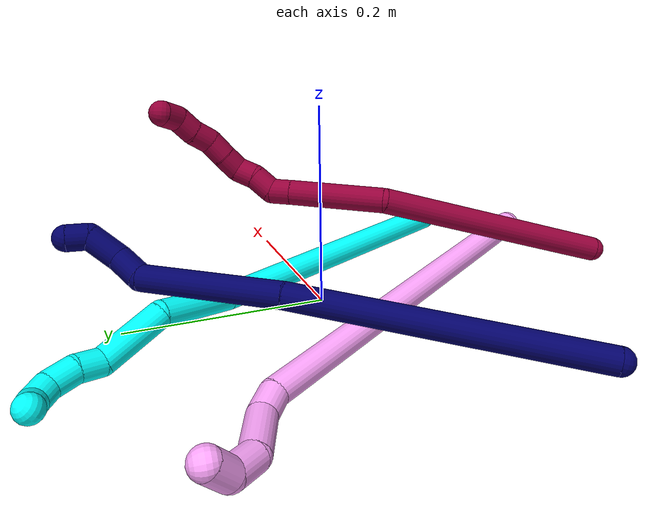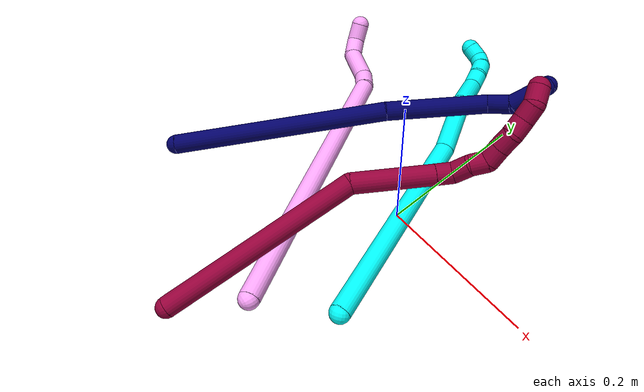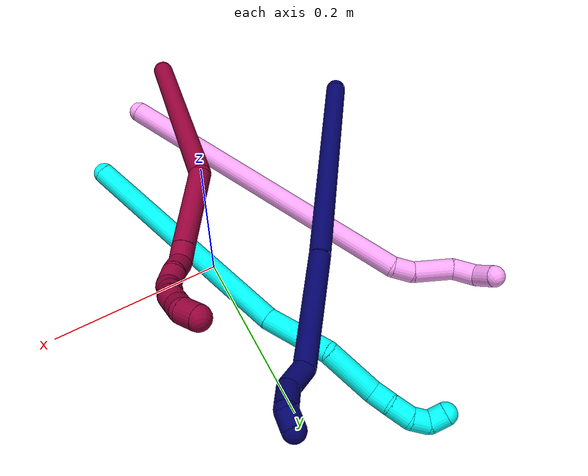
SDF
<sdf version="1.7">
 <world name="default">
  <model name="photoneo_s_sensor">
   <static>1</static>
   <pose>0 0 2 1.57079 1.57079 3.14159</pose>
   <link name="link">
    <inertial><mass>0.1</mass></inertial>
    <sensor name="sensor" type="depth">
     <update_rate>30</update_rate>
     <camera>
      <horizontal_fov>1.22</horizontal_fov>
      <image><width>1920</width><height>1200</height><format>B8G8R8</format></image>
      <clip><near>0.1</near><far>4</far></clip>
      <depth_camera><output>points</output></depth_camera>
     </camera>
     <plugin name="camera_plugin" filename="libgazebo_ros_depth_camera.so">
      <baseline>0.2</baseline>
      <alwaysOn>1</alwaysOn>
      <updateRate>0.0</updateRate>
      <cameraName>camera_ir</cameraName>
      <imageTopicName>/camera/color/image_raw</imageTopicName>
      <cameraInfoTopicName>/camera/color/camera_info</cameraInfoTopicName>
      <depthImageTopicName>/camera/depth/image_raw</depthImageTopicName>
      <depthImageCameraInfoTopicName>/camera/depth/camera_info</depthImageCameraInfoTopicName>
      <pointCloudTopicName>/camera/depth/points</pointCloudTopicName>
      <frameName>fr_optical</frameName>
      <pointCloudCutoff>0.1</pointCloudCutoff>
      <pointCloudCutoffMax>2.0</pointCloudCutoffMax>
      <distortionK1>0</distortionK1>
      <distortionK2>0</distortionK2>
      <distortionK3>0</distortionK3>
      <distortionT1>0</distortionT1>
      <distortionT2>0</distortionT2>
      <CxPrime>0</CxPrime>
      <Cx>0</Cx>
      <Cy>0</Cy>
      <focalLength>0</focalLength>
      <hackBaseline>0</hackBaseline>
     </plugin>
    </sensor>
   </link>
  </model>
  <model name="bin">
   <static>1</static>
   <link name="bottom">
    <collision name="collision-bottom">
     <pose>0 0 -0.01 0 -0 0</pose>
     <geometry><box><size>0.8 0.6 0.02</size></box></geometry>
     <surface>
      <friction><ode><mu>100</mu><mu2>100</mu2></ode></friction>
      <contact><collide_bitmask>65535</collide_bitmask></contact>
     </surface>
    </collision>
   </link>
   <link name="west_wall">
    <collision name="collision-west_wall">
     <pose>-0.41 0 0.1 0 -0 0</pose>
     <geometry><box><size>0.02 0.6 0.2</size></box></geometry>
     <surface>
      <friction><ode><mu>100</mu><mu2>100</mu2></ode></friction>
      <contact><collide_bitmask>65535</collide_bitmask></contact>
     </surface>
    </collision>
   </link>
   <link name="east_wall">
    <collision name="collision-east_wall">
     <pose>0.41 0 0.1 0 -0 0</pose>
     <geometry><box><size>0.02 0.6 0.2</size></box></geometry>
     <surface>
      <friction><ode><mu>100</mu><mu2>100</mu2></ode></friction>
      <contact><collide_bitmask>65535</collide_bitmask></contact>
     </surface>
    </collision>
   </link>
   <link name="south_wall">
    <collision name="collision-south_wall">
     <pose>0 -0.31 0.1 0 -0 0</pose>
     <geometry><box><size>0.8 0.02 0.2</size></box></geometry>
     <surface>
      <friction><ode><mu>100</mu><mu2>100</mu2></ode></friction>
      <contact><collide_bitmask>65535</collide_bitmask></contact>
     </surface>
    </collision>
   </link>
   <link name="north_wall">
    <collision name="collision-north_wall">
     <pose>0 0.31 0.1 0 -0 0</pose>
     <geometry><box><size>0.8 0.02 0.2</size></box></geometry>
     <surface>
      <friction><ode><mu>100</mu><mu2>100</mu2></ode></friction>
      <contact><collide_bitmask>65535</collide_bitmask></contact>
     </surface>
    </collision>
   </link>
  </model>
  <model name="3">
   <static>0</static>
   <link name="3">
    <collision name="collision-cylinder-e_1_1_4">
     <pose>-0.031854 0.103169 0.082612 -0.895601 -0.236498 0.11401</pose>
     <geometry><cylinder><radius>0.0125</radius><length>0.271907</length></cylinder></geometry>
     <surface>
      <friction><ode><mu>1.16</mu><mu2>1.16</mu2><slip1>0</slip1><slip2>0</slip2></ode></friction>
      <contact><ode><kp>1e+06</kp><kd>1</kd><max_vel>0</max_vel><min_depth>0.001</min_depth></ode></contact>
     </surface>
    </collision>
    <visual name="visual-cylinder-e_1_1_4">
     <pose>-0.031854 0.103169 0.082612 -0.895601 -0.236498 0.11401</pose>
     <geometry><cylinder><radius>0.0125</radius><length>0.271907</length></cylinder></geometry>
     <material><ambient>0.003922 1 0.996078 1</ambient></material>
    </visual>
    <collision name="collision-cylinder-e_2_4_5">
     <pose>-0.074943 0.22834 0.194847 -0.638824 -0.295579 0.098397</pose>
     <geometry><cylinder><radius>0.0125</radius><length>0.077142</length></cylinder></geometry>
     <surface>
      <friction><ode><mu>1.16</mu><mu2>1.16</mu2><slip1>0</slip1><slip2>0</slip2></ode></friction>
      <contact><ode><kp>1e+06</kp><kd>1</kd><max_vel>0</max_vel><min_depth>0.001</min_depth></ode></contact>
     </surface>
    </collision>
    <visual name="visual-cylinder-e_2_4_5">
     <pose>-0.074943 0.22834 0.194847 -0.638824 -0.295579 0.098397</pose>
     <geometry><cylinder><radius>0.0125</radius><length>0.077142</length></cylinder></geometry>
     <material><ambient>0.003922 1 0.996078 1</ambient></material>
    </visual>
    <collision name="collision-cylinder-e_3_5_6">
     <pose>-0.098805 0.27697 0.235922 -1.16461 -0.410788 0.272659</pose>
     <geometry><cylinder><radius>0.0125</radius><length>0.063237</length></cylinder></geometry>
     <surface>
      <friction><ode><mu>1.16</mu><mu2>1.16</mu2><slip1>0</slip1><slip2>0</slip2></ode></friction>
      <contact><ode><kp>1e+06</kp><kd>1</kd><max_vel>0</max_vel><min_depth>0.001</min_depth></ode></contact>
     </surface>
    </collision>
    <visual name="visual-cylinder-e_3_5_6">
     <pose>-0.098805 0.27697 0.235922 -1.16461 -0.410788 0.272659</pose>
     <geometry><cylinder><radius>0.0125</radius><length>0.063237</length></cylinder></geometry>
     <material><ambient>0.003922 1 0.996078 1</ambient></material>
    </visual>
    <collision name="collision-cylinder-e_4_6_7">
     <pose>-0.113862 0.310896 0.255877 -0.709266 -0.213648 0.079372</pose>
     <geometry><cylinder><radius>0.0125</radius><length>0.022929</length></cylinder></geometry>
     <surface>
      <friction><ode><mu>1.16</mu><mu2>1.16</mu2><slip1>0</slip1><slip2>0</slip2></ode></friction>
      <contact><ode><kp>1e+06</kp><kd>1</kd><max_vel>0</max_vel><min_depth>0.001</min_depth></ode></contact>
     </surface>
    </collision>
    <visual name="visual-cylinder-e_4_6_7">
     <pose>-0.113862 0.310896 0.255877 -0.709266 -0.213648 0.079372</pose>
     <geometry><cylinder><radius>0.0125</radius><length>0.022929</length></cylinder></geometry>
     <material><ambient>0.003922 1 0.996078 1</ambient></material>
    </visual>
    <collision name="collision-cylinder-e_5_7_8">
     <pose>-0.121259 0.327247 0.271154 -0.928438 -0.413825 0.209448</pose>
     <geometry><cylinder><radius>0.0125</radius><length>0.024702</length></cylinder></geometry>
     <surface>
      <friction><ode><mu>1.16</mu><mu2>1.16</mu2><slip1>0</slip1><slip2>0</slip2></ode></friction>
      <contact><ode><kp>1e+06</kp><kd>1</kd><max_vel>0</max_vel><min_depth>0.001</min_depth></ode></contact>
     </surface>
    </collision>
    <visual name="visual-cylinder-e_5_7_8">
     <pose>-0.121259 0.327247 0.271154 -0.928438 -0.413825 0.209448</pose>
     <geometry><cylinder><radius>0.0125</radius><length>0.024702</length></cylinder></geometry>
     <material><ambient>0.003922 1 0.996078 1</ambient></material>
    </visual>
    <collision name="collision-cylinder-e_6_8_9">
     <pose>-0.133441 0.341273 0.282828 -0.792646 -0.801926 0.351146</pose>
     <geometry><cylinder><radius>0.0125</radius><length>0.020077</length></cylinder></geometry>
     <surface>
      <friction><ode><mu>1.16</mu><mu2>1.16</mu2><slip1>0</slip1><slip2>0</slip2></ode></friction>
      <contact><ode><kp>1e+06</kp><kd>1</kd><max_vel>0</max_vel><min_depth>0.001</min_depth></ode></contact>
     </surface>
    </collision>
    <visual name="visual-cylinder-e_6_8_9">
     <pose>-0.133441 0.341273 0.282828 -0.792646 -0.801926 0.351146</pose>
     <geometry><cylinder><radius>0.0125</radius><length>0.020077</length></cylinder></geometry>
     <material><ambient>0.003922 1 0.996078 1</ambient></material>
    </visual>
    <collision name="collision-cylinder-e_7_9_2">
     <pose>-0.148254 0.343935 0.293809 0.362919 -0.862874 -0.168532</pose>
     <geometry><cylinder><radius>0.0125</radius><length>0.020006</length></cylinder></geometry>
     <surface>
      <friction><ode><mu>1.16</mu><mu2>1.16</mu2><slip1>0</slip1><slip2>0</slip2></ode></friction>
      <contact><ode><kp>1e+06</kp><kd>1</kd><max_vel>0</max_vel><min_depth>0.001</min_depth></ode></contact>
     </surface>
    </collision>
    <visual name="visual-cylinder-e_7_9_2">
     <pose>-0.148254 0.343935 0.293809 0.362919 -0.862874 -0.168532</pose>
     <geometry><cylinder><radius>0.0125</radius><length>0.020006</length></cylinder></geometry>
     <material><ambient>0.003922 1 0.996078 1</ambient></material>
    </visual>
    <collision name="collision-sphere-2">
     <pose>-0.155854 0.341626 0.299889 0 -0 0</pose>
     <geometry><sphere><radius>0.0125</radius></sphere></geometry>
     <surface>
      <friction><ode><mu>1.16</mu><mu2>1.16</mu2><slip1>0</slip1><slip2>0</slip2></ode></friction>
      <contact><ode><kp>1e+06</kp><kd>1</kd><max_vel>0</max_vel><min_depth>0.001</min_depth></ode></contact>
     </surface>
    </collision>
    <visual name="visual-sphere-2">
     <pose>-0.155854 0.341626 0.299889 0 -0 0</pose>
     <geometry><sphere><radius>0.0125</radius></sphere></geometry>
     <material><ambient>0.003922 1 0.996078 1</ambient></material>
    </visual>
    <collision name="collision-sphere-9">
     <pose>-0.140655 0.346244 0.287728 0 -0 0</pose>
     <geometry><sphere><radius>0.0125</radius></sphere></geometry>
     <surface>
      <friction><ode><mu>1.16</mu><mu2>1.16</mu2><slip1>0</slip1><slip2>0</slip2></ode></friction>
      <contact><ode><kp>1e+06</kp><kd>1</kd><max_vel>0</max_vel><min_depth>0.001</min_depth></ode></contact>
     </surface>
    </collision>
    <visual name="visual-sphere-9">
     <pose>-0.140655 0.346244 0.287728 0 -0 0</pose>
     <geometry><sphere><radius>0.0125</radius></sphere></geometry>
     <material><ambient>0.003922 1 0.996078 1</ambient></material>
    </visual>
    <collision name="collision-sphere-4">
     <pose>-0.063708 0.206339 0.165225 0 -0 0</pose>
     <geometry><sphere><radius>0.0125</radius></sphere></geometry>
     <surface>
      <friction><ode><mu>1.16</mu><mu2>1.16</mu2><slip1>0</slip1><slip2>0</slip2></ode></friction>
      <contact><ode><kp>1e+06</kp><kd>1</kd><max_vel>0</max_vel><min_depth>0.001</min_depth></ode></contact>
     </surface>
    </collision>
    <visual name="visual-sphere-4">
     <pose>-0.063708 0.206339 0.165225 0 -0 0</pose>
     <geometry><sphere><radius>0.0125</radius></sphere></geometry>
     <material><ambient>0.003922 1 0.996078 1</ambient></material>
    </visual>
    <collision name="collision-sphere-1">
     <geometry><sphere><radius>0.0125</radius></sphere></geometry>
     <surface>
      <friction><ode><mu>1.16</mu><mu2>1.16</mu2><slip1>0</slip1><slip2>0</slip2></ode></friction>
      <contact><ode><kp>1e+06</kp><kd>1</kd><max_vel>0</max_vel><min_depth>0.001</min_depth></ode></contact>
     </surface>
    </collision>
    <visual name="visual-sphere-1">
     <geometry><sphere><radius>0.0125</radius></sphere></geometry>
     <material><ambient>0.003922 1 0.996078 1</ambient></material>
    </visual>
    <collision name="collision-sphere-8">
     <pose>-0.126226 0.336302 0.277928 0 -0 0</pose>
     <geometry><sphere><radius>0.0125</radius></sphere></geometry>
     <surface>
      <friction><ode><mu>1.16</mu><mu2>1.16</mu2><slip1>0</slip1><slip2>0</slip2></ode></friction>
      <contact><ode><kp>1e+06</kp><kd>1</kd><max_vel>0</max_vel><min_depth>0.001</min_depth></ode></contact>
     </surface>
    </collision>
    <visual name="visual-sphere-8">
     <pose>-0.126226 0.336302 0.277928 0 -0 0</pose>
     <geometry><sphere><radius>0.0125</radius></sphere></geometry>
     <material><ambient>0.003922 1 0.996078 1</ambient></material>
    </visual>
    <collision name="collision-sphere-5">
     <pose>-0.086179 0.25034 0.224469 0 -0 0</pose>
     <geometry><sphere><radius>0.0125</radius></sphere></geometry>
     <surface>
      <friction><ode><mu>1.16</mu><mu2>1.16</mu2><slip1>0</slip1><slip2>0</slip2></ode></friction>
      <contact><ode><kp>1e+06</kp><kd>1</kd><max_vel>0</max_vel><min_depth>0.001</min_depth></ode></contact>
     </surface>
    </collision>
    <visual name="visual-sphere-5">
     <pose>-0.086179 0.25034 0.224469 0 -0 0</pose>
     <geometry><sphere><radius>0.0125</radius></sphere></geometry>
     <material><ambient>0.003922 1 0.996078 1</ambient></material>
    </visual>
    <collision name="collision-sphere-6">
     <pose>-0.111431 0.303599 0.247375 0 -0 0</pose>
     <geometry><sphere><radius>0.0125</radius></sphere></geometry>
     <surface>
      <friction><ode><mu>1.16</mu><mu2>1.16</mu2><slip1>0</slip1><slip2>0</slip2></ode></friction>
      <contact><ode><kp>1e+06</kp><kd>1</kd><max_vel>0</max_vel><min_depth>0.001</min_depth></ode></contact>
     </surface>
    </collision>
    <visual name="visual-sphere-6">
     <pose>-0.111431 0.303599 0.247375 0 -0 0</pose>
     <geometry><sphere><radius>0.0125</radius></sphere></geometry>
     <material><ambient>0.003922 1 0.996078 1</ambient></material>
    </visual>
    <collision name="collision-sphere-7">
     <pose>-0.116293 0.318192 0.264379 0 -0 0</pose>
     <geometry><sphere><radius>0.0125</radius></sphere></geometry>
     <surface>
      <friction><ode><mu>1.16</mu><mu2>1.16</mu2><slip1>0</slip1><slip2>0</slip2></ode></friction>
      <contact><ode><kp>1e+06</kp><kd>1</kd><max_vel>0</max_vel><min_depth>0.001</min_depth></ode></contact>
     </surface>
    </collision>
    <visual name="visual-sphere-7">
     <pose>-0.116293 0.318192 0.264379 0 -0 0</pose>
     <geometry><sphere><radius>0.0125</radius></sphere></geometry>
     <material><ambient>0.003922 1 0.996078 1</ambient></material>
    </visual>
    <inertial>
     <pose>-0.063884 0.184253 0.153068 0 -0 0</pose>
     <mass>0.5</mass>
     <inertia>
      <ixx>0.001879</ixx>
      <ixy>0</ixy>
      <ixz>0</ixz>
      <iyy>0.001356</iyy>
      <iyz>0</iyz>
      <izz>-0.000883</izz>
     </inertia>
    </inertial>
   </link>
   <pose>0.071813 -0.152994 0.050419 -0.670294 -0.353268 0.122537</pose>
  </model>
  <model name="4">
   <static>0</static>
   <link name="4">
    <collision name="collision-cylinder-e_1_1_4">
     <pose>-0.039234 0.098031 -0.154018 -2.57477 -0.211678 0.699521</pose>
     <geometry><cylinder><radius>0.0125</radius><length>0.373475</length></cylinder></geometry>
     <surface>
      <friction><ode><mu>1.16</mu><mu2>1.16</mu2><slip1>0</slip1><slip2>0</slip2></ode></friction>
      <contact><ode><kp>1e+06</kp><kd>1</kd><max_vel>0</max_vel><min_depth>0.001</min_depth></ode></contact>
     </surface>
    </collision>
    <visual name="visual-cylinder-e_1_1_4">
     <pose>-0.039234 0.098031 -0.154018 -2.57477 -0.211678 0.699521</pose>
     <geometry><cylinder><radius>0.0125</radius><length>0.373475</length></cylinder></geometry>
     <material><ambient>1 0.65098 0.996078 1</ambient></material>
    </visual>
    <collision name="collision-cylinder-e_2_4_5">
     <pose>-0.083143 0.205387 -0.314843 -2.2015 -0.384822 0.732384</pose>
     <geometry><cylinder><radius>0.0125</radius><length>0.024912</length></cylinder></geometry>
     <surface>
      <friction><ode><mu>1.16</mu><mu2>1.16</mu2><slip1>0</slip1><slip2>0</slip2></ode></friction>
      <contact><ode><kp>1e+06</kp><kd>1</kd><max_vel>0</max_vel><min_depth>0.001</min_depth></ode></contact>
     </surface>
    </collision>
    <visual name="visual-cylinder-e_2_4_5">
     <pose>-0.083143 0.205387 -0.314843 -2.2015 -0.384822 0.732384</pose>
     <geometry><cylinder><radius>0.0125</radius><length>0.024912</length></cylinder></geometry>
     <material><ambient>1 0.65098 0.996078 1</ambient></material>
    </visual>
    <collision name="collision-cylinder-e_3_5_6">
     <pose>-0.093736 0.23693 -0.328624 -1.87486 -0.248828 0.337392</pose>
     <geometry><cylinder><radius>0.0125</radius><length>0.048056</length></cylinder></geometry>
     <surface>
      <friction><ode><mu>1.16</mu><mu2>1.16</mu2><slip1>0</slip1><slip2>0</slip2></ode></friction>
      <contact><ode><kp>1e+06</kp><kd>1</kd><max_vel>0</max_vel><min_depth>0.001</min_depth></ode></contact>
     </surface>
    </collision>
    <visual name="visual-cylinder-e_3_5_6">
     <pose>-0.093736 0.23693 -0.328624 -1.87486 -0.248828 0.337392</pose>
     <geometry><cylinder><radius>0.0125</radius><length>0.048056</length></cylinder></geometry>
     <material><ambient>1 0.65098 0.996078 1</ambient></material>
    </visual>
    <collision name="collision-cylinder-e_4_6_7">
     <pose>-0.100129 0.269227 -0.345188 -2.33152 -0.034125 0.07956</pose>
     <geometry><cylinder><radius>0.0125</radius><length>0.02784</length></cylinder></geometry>
     <surface>
      <friction><ode><mu>1.16</mu><mu2>1.16</mu2><slip1>0</slip1><slip2>0</slip2></ode></friction>
      <contact><ode><kp>1e+06</kp><kd>1</kd><max_vel>0</max_vel><min_depth>0.001</min_depth></ode></contact>
     </surface>
    </collision>
    <visual name="visual-cylinder-e_4_6_7">
     <pose>-0.100129 0.269227 -0.345188 -2.33152 -0.034125 0.07956</pose>
     <geometry><cylinder><radius>0.0125</radius><length>0.02784</length></cylinder></geometry>
     <material><ambient>1 0.65098 0.996078 1</ambient></material>
    </visual>
    <collision name="collision-cylinder-e_5_7_2">
     <pose>-0.09253 0.286215 -0.362018 -2.37931 0.678763 -1.44442</pose>
     <geometry><cylinder><radius>0.0125</radius><length>0.025718</length></cylinder></geometry>
     <surface>
      <friction><ode><mu>1.16</mu><mu2>1.16</mu2><slip1>0</slip1><slip2>0</slip2></ode></friction>
      <contact><ode><kp>1e+06</kp><kd>1</kd><max_vel>0</max_vel><min_depth>0.001</min_depth></ode></contact>
     </surface>
    </collision>
    <visual name="visual-cylinder-e_5_7_2">
     <pose>-0.09253 0.286215 -0.362018 -2.37931 0.678763 -1.44442</pose>
     <geometry><cylinder><radius>0.0125</radius><length>0.025718</length></cylinder></geometry>
     <material><ambient>1 0.65098 0.996078 1</ambient></material>
    </visual>
    <collision name="collision-sphere-2">
     <pose>-0.084457 0.293127 -0.369257 0 -0 0</pose>
     <geometry><sphere><radius>0.0125</radius></sphere></geometry>
     <surface>
      <friction><ode><mu>1.16</mu><mu2>1.16</mu2><slip1>0</slip1><slip2>0</slip2></ode></friction>
      <contact><ode><kp>1e+06</kp><kd>1</kd><max_vel>0</max_vel><min_depth>0.001</min_depth></ode></contact>
     </surface>
    </collision>
    <visual name="visual-sphere-2">
     <pose>-0.084457 0.293127 -0.369257 0 -0 0</pose>
     <geometry><sphere><radius>0.0125</radius></sphere></geometry>
     <material><ambient>1 0.65098 0.996078 1</ambient></material>
    </visual>
    <collision name="collision-sphere-7">
     <pose>-0.100604 0.279303 -0.354779 0 -0 0</pose>
     <geometry><sphere><radius>0.0125</radius></sphere></geometry>
     <surface>
      <friction><ode><mu>1.16</mu><mu2>1.16</mu2><slip1>0</slip1><slip2>0</slip2></ode></friction>
      <contact><ode><kp>1e+06</kp><kd>1</kd><max_vel>0</max_vel><min_depth>0.001</min_depth></ode></contact>
     </surface>
    </collision>
    <visual name="visual-sphere-7">
     <pose>-0.100604 0.279303 -0.354779 0 -0 0</pose>
     <geometry><sphere><radius>0.0125</radius></sphere></geometry>
     <material><ambient>1 0.65098 0.996078 1</ambient></material>
    </visual>
    <collision name="collision-sphere-6">
     <pose>-0.099654 0.25915 -0.335596 0 -0 0</pose>
     <geometry><sphere><radius>0.0125</radius></sphere></geometry>
     <surface>
      <friction><ode><mu>1.16</mu><mu2>1.16</mu2><slip1>0</slip1><slip2>0</slip2></ode></friction>
      <contact><ode><kp>1e+06</kp><kd>1</kd><max_vel>0</max_vel><min_depth>0.001</min_depth></ode></contact>
     </surface>
    </collision>
    <visual name="visual-sphere-6">
     <pose>-0.099654 0.25915 -0.335596 0 -0 0</pose>
     <geometry><sphere><radius>0.0125</radius></sphere></geometry>
     <material><ambient>1 0.65098 0.996078 1</ambient></material>
    </visual>
    <collision name="collision-sphere-5">
     <pose>-0.087819 0.214711 -0.321652 0 -0 0</pose>
     <geometry><sphere><radius>0.0125</radius></sphere></geometry>
     <surface>
      <friction><ode><mu>1.16</mu><mu2>1.16</mu2><slip1>0</slip1><slip2>0</slip2></ode></friction>
      <contact><ode><kp>1e+06</kp><kd>1</kd><max_vel>0</max_vel><min_depth>0.001</min_depth></ode></contact>
     </surface>
    </collision>
    <visual name="visual-sphere-5">
     <pose>-0.087819 0.214711 -0.321652 0 -0 0</pose>
     <geometry><sphere><radius>0.0125</radius></sphere></geometry>
     <material><ambient>1 0.65098 0.996078 1</ambient></material>
    </visual>
    <collision name="collision-sphere-1">
     <geometry><sphere><radius>0.0125</radius></sphere></geometry>
     <surface>
      <friction><ode><mu>1.16</mu><mu2>1.16</mu2><slip1>0</slip1><slip2>0</slip2></ode></friction>
      <contact><ode><kp>1e+06</kp><kd>1</kd><max_vel>0</max_vel><min_depth>0.001</min_depth></ode></contact>
     </surface>
    </collision>
    <visual name="visual-sphere-1">
     <geometry><sphere><radius>0.0125</radius></sphere></geometry>
     <material><ambient>1 0.65098 0.996078 1</ambient></material>
    </visual>
    <collision name="collision-sphere-4">
     <pose>-0.078467 0.196063 -0.308035 0 -0 0</pose>
     <geometry><sphere><radius>0.0125</radius></sphere></geometry>
     <surface>
      <friction><ode><mu>1.16</mu><mu2>1.16</mu2><slip1>0</slip1><slip2>0</slip2></ode></friction>
      <contact><ode><kp>1e+06</kp><kd>1</kd><max_vel>0</max_vel><min_depth>0.001</min_depth></ode></contact>
     </surface>
    </collision>
    <visual name="visual-sphere-4">
     <pose>-0.078467 0.196063 -0.308035 0 -0 0</pose>
     <geometry><sphere><radius>0.0125</radius></sphere></geometry>
     <material><ambient>1 0.65098 0.996078 1</ambient></material>
    </visual>
    <inertial>
     <pose>-0.052792 0.135941 -0.200155 0 -0 0</pose>
     <mass>0.5</mass>
     <inertia>
      <ixx>0.006012</ixx>
      <ixy>0</ixy>
      <ixz>0</ixz>
      <iyy>0.000269</iyy>
      <iyz>0</iyz>
      <izz>-0.001414</izz>
     </inertia>
    </inertial>
   </link>
   <pose>-0.001974 -0.217687 0.057112 1.38717 -1.30637 0.086136</pose>
  </model>
  <model name="7">
   <static>0</static>
   <link name="7">
    <collision name="collision-cylinder-e_1_1_4">
     <pose>0.083713 0.107626 -0.029876 -1.84157 0.643163 -0.826028</pose>
     <geometry><cylinder><radius>0.0125</radius><length>0.279169</length></cylinder></geometry>
     <surface>
      <friction><ode><mu>1.16</mu><mu2>1.16</mu2><slip1>0</slip1><slip2>0</slip2></ode></friction>
      <contact><ode><kp>1e+06</kp><kd>1</kd><max_vel>0</max_vel><min_depth>0.001</min_depth></ode></contact>
     </surface>
    </collision>
    <visual name="visual-cylinder-e_1_1_4">
     <pose>0.083713 0.107626 -0.029876 -1.84157 0.643163 -0.826028</pose>
     <geometry><cylinder><radius>0.0125</radius><length>0.279169</length></cylinder></geometry>
     <material><ambient>0.003922 0 0.403922 1</ambient></material>
    </visual>
    <collision name="collision-cylinder-e_2_4_5">
     <pose>0.20889 0.264273 -0.079835 -1.95964 0.664117 -0.949443</pose>
     <geometry><cylinder><radius>0.0125</radius><length>0.134546</length></cylinder></geometry>
     <surface>
      <friction><ode><mu>1.16</mu><mu2>1.16</mu2><slip1>0</slip1><slip2>0</slip2></ode></friction>
      <contact><ode><kp>1e+06</kp><kd>1</kd><max_vel>0</max_vel><min_depth>0.001</min_depth></ode></contact>
     </surface>
    </collision>
    <visual name="visual-cylinder-e_2_4_5">
     <pose>0.20889 0.264273 -0.079835 -1.95964 0.664117 -0.949443</pose>
     <geometry><cylinder><radius>0.0125</radius><length>0.134546</length></cylinder></geometry>
     <material><ambient>0.003922 0 0.403922 1</ambient></material>
    </visual>
    <collision name="collision-cylinder-e_3_5_6">
     <pose>0.264385 0.320524 -0.098482 -1.37466 1.08695 -0.920774</pose>
     <geometry><cylinder><radius>0.0125</radius><length>0.031698</length></cylinder></geometry>
     <surface>
      <friction><ode><mu>1.16</mu><mu2>1.16</mu2><slip1>0</slip1><slip2>0</slip2></ode></friction>
      <contact><ode><kp>1e+06</kp><kd>1</kd><max_vel>0</max_vel><min_depth>0.001</min_depth></ode></contact>
     </surface>
    </collision>
    <visual name="visual-cylinder-e_3_5_6">
     <pose>0.264385 0.320524 -0.098482 -1.37466 1.08695 -0.920774</pose>
     <geometry><cylinder><radius>0.0125</radius><length>0.031698</length></cylinder></geometry>
     <material><ambient>0.003922 0 0.403922 1</ambient></material>
    </visual>
    <collision name="collision-cylinder-e_4_6_7">
     <pose>0.287963 0.341088 -0.092423 -1.23708 0.594911 -0.429615</pose>
     <geometry><cylinder><radius>0.0125</radius><length>0.034075</length></cylinder></geometry>
     <surface>
      <friction><ode><mu>1.16</mu><mu2>1.16</mu2><slip1>0</slip1><slip2>0</slip2></ode></friction>
      <contact><ode><kp>1e+06</kp><kd>1</kd><max_vel>0</max_vel><min_depth>0.001</min_depth></ode></contact>
     </surface>
    </collision>
    <visual name="visual-cylinder-e_4_6_7">
     <pose>0.287963 0.341088 -0.092423 -1.23708 0.594911 -0.429615</pose>
     <geometry><cylinder><radius>0.0125</radius><length>0.034075</length></cylinder></geometry>
     <material><ambient>0.003922 0 0.403922 1</ambient></material>
    </visual>
    <collision name="collision-cylinder-e_5_7_2">
     <pose>0.299043 0.364077 -0.090894 -1.88075 0.14995 -0.205142</pose>
     <geometry><cylinder><radius>0.0125</radius><length>0.020512</length></cylinder></geometry>
     <surface>
      <friction><ode><mu>1.16</mu><mu2>1.16</mu2><slip1>0</slip1><slip2>0</slip2></ode></friction>
      <contact><ode><kp>1e+06</kp><kd>1</kd><max_vel>0</max_vel><min_depth>0.001</min_depth></ode></contact>
     </surface>
    </collision>
    <visual name="visual-cylinder-e_5_7_2">
     <pose>0.299043 0.364077 -0.090894 -1.88075 0.14995 -0.205142</pose>
     <geometry><cylinder><radius>0.0125</radius><length>0.020512</length></cylinder></geometry>
     <material><ambient>0.003922 0 0.403922 1</ambient></material>
    </visual>
    <collision name="collision-sphere-2">
     <pose>0.300576 0.373735 -0.093987 0 -0 0</pose>
     <geometry><sphere><radius>0.0125</radius></sphere></geometry>
     <surface>
      <friction><ode><mu>1.16</mu><mu2>1.16</mu2><slip1>0</slip1><slip2>0</slip2></ode></friction>
      <contact><ode><kp>1e+06</kp><kd>1</kd><max_vel>0</max_vel><min_depth>0.001</min_depth></ode></contact>
     </surface>
    </collision>
    <visual name="visual-sphere-2">
     <pose>0.300576 0.373735 -0.093987 0 -0 0</pose>
     <geometry><sphere><radius>0.0125</radius></sphere></geometry>
     <material><ambient>0.003922 0 0.403922 1</ambient></material>
    </visual>
    <collision name="collision-sphere-7">
     <pose>0.297511 0.35442 -0.087801 0 -0 0</pose>
     <geometry><sphere><radius>0.0125</radius></sphere></geometry>
     <surface>
      <friction><ode><mu>1.16</mu><mu2>1.16</mu2><slip1>0</slip1><slip2>0</slip2></ode></friction>
      <contact><ode><kp>1e+06</kp><kd>1</kd><max_vel>0</max_vel><min_depth>0.001</min_depth></ode></contact>
     </surface>
    </collision>
    <visual name="visual-sphere-7">
     <pose>0.297511 0.35442 -0.087801 0 -0 0</pose>
     <geometry><sphere><radius>0.0125</radius></sphere></geometry>
     <material><ambient>0.003922 0 0.403922 1</ambient></material>
    </visual>
    <collision name="collision-sphere-6">
     <pose>0.278415 0.327756 -0.097045 0 -0 0</pose>
     <geometry><sphere><radius>0.0125</radius></sphere></geometry>
     <surface>
      <friction><ode><mu>1.16</mu><mu2>1.16</mu2><slip1>0</slip1><slip2>0</slip2></ode></friction>
      <contact><ode><kp>1e+06</kp><kd>1</kd><max_vel>0</max_vel><min_depth>0.001</min_depth></ode></contact>
     </surface>
    </collision>
    <visual name="visual-sphere-6">
     <pose>0.278415 0.327756 -0.097045 0 -0 0</pose>
     <geometry><sphere><radius>0.0125</radius></sphere></geometry>
     <material><ambient>0.003922 0 0.403922 1</ambient></material>
    </visual>
    <collision name="collision-sphere-5">
     <pose>0.250355 0.313293 -0.099918 0 -0 0</pose>
     <geometry><sphere><radius>0.0125</radius></sphere></geometry>
     <surface>
      <friction><ode><mu>1.16</mu><mu2>1.16</mu2><slip1>0</slip1><slip2>0</slip2></ode></friction>
      <contact><ode><kp>1e+06</kp><kd>1</kd><max_vel>0</max_vel><min_depth>0.001</min_depth></ode></contact>
     </surface>
    </collision>
    <visual name="visual-sphere-5">
     <pose>0.250355 0.313293 -0.099918 0 -0 0</pose>
     <geometry><sphere><radius>0.0125</radius></sphere></geometry>
     <material><ambient>0.003922 0 0.403922 1</ambient></material>
    </visual>
    <collision name="collision-sphere-1">
     <geometry><sphere><radius>0.0125</radius></sphere></geometry>
     <surface>
      <friction><ode><mu>1.16</mu><mu2>1.16</mu2><slip1>0</slip1><slip2>0</slip2></ode></friction>
      <contact><ode><kp>1e+06</kp><kd>1</kd><max_vel>0</max_vel><min_depth>0.001</min_depth></ode></contact>
     </surface>
    </collision>
    <visual name="visual-sphere-1">
     <geometry><sphere><radius>0.0125</radius></sphere></geometry>
     <material><ambient>0.003922 0 0.403922 1</ambient></material>
    </visual>
    <collision name="collision-sphere-4">
     <pose>0.167426 0.215252 -0.059751 0 -0 0</pose>
     <geometry><sphere><radius>0.0125</radius></sphere></geometry>
     <surface>
      <friction><ode><mu>1.16</mu><mu2>1.16</mu2><slip1>0</slip1><slip2>0</slip2></ode></friction>
      <contact><ode><kp>1e+06</kp><kd>1</kd><max_vel>0</max_vel><min_depth>0.001</min_depth></ode></contact>
     </surface>
    </collision>
    <visual name="visual-sphere-4">
     <pose>0.167426 0.215252 -0.059751 0 -0 0</pose>
     <geometry><sphere><radius>0.0125</radius></sphere></geometry>
     <material><ambient>0.003922 0 0.403922 1</ambient></material>
    </visual>
    <inertial>
     <pose>0.151605 0.189707 -0.054434 0 -0 0</pose>
     <mass>0.5</mass>
     <inertia>
      <ixx>-9.6e-05</ixx>
      <ixy>0</ixy>
      <ixz>0</ixz>
      <iyy>-0.000681</iyy>
      <iyz>0</iyz>
      <izz>-0.002801</izz>
     </inertia>
    </inertial>
   </link>
   <pose>-0.260002 -0.15571 0.027762 0.301365 -0.14487 0.026515</pose>
  </model>
  <model name="8">
   <static>0</static>
   <link name="8">
    <collision name="collision-cylinder-e_1_1_4">
     <pose>-0.009486 0.017424 -0.118854 -2.99603 -0.078806 0.991357</pose>
     <geometry><cylinder><radius>0.0125</radius><length>0.240997</length></cylinder></geometry>
     <surface>
      <friction><ode><mu>1.16</mu><mu2>1.16</mu2><slip1>0</slip1><slip2>0</slip2></ode></friction>
      <contact><ode><kp>1e+06</kp><kd>1</kd><max_vel>0</max_vel><min_depth>0.001</min_depth></ode></contact>
     </surface>
    </collision>
    <visual name="visual-cylinder-e_1_1_4">
     <pose>-0.009486 0.017424 -0.118854 -2.99603 -0.078806 0.991357</pose>
     <geometry><cylinder><radius>0.0125</radius><length>0.240997</length></cylinder></geometry>
     <material><ambient>0.584314 0 0.227451 1</ambient></material>
    </visual>
    <collision name="collision-cylinder-e_2_4_5">
     <pose>-2.8e-05 0.044349 -0.280788 -2.92453 0.405618 -2.16708</pose>
     <geometry><cylinder><radius>0.0125</radius><length>0.096021</length></cylinder></geometry>
     <surface>
      <friction><ode><mu>1.16</mu><mu2>1.16</mu2><slip1>0</slip1><slip2>0</slip2></ode></friction>
      <contact><ode><kp>1e+06</kp><kd>1</kd><max_vel>0</max_vel><min_depth>0.001</min_depth></ode></contact>
     </surface>
    </collision>
    <visual name="visual-cylinder-e_2_4_5">
     <pose>-2.8e-05 0.044349 -0.280788 -2.92453 0.405618 -2.16708</pose>
     <geometry><cylinder><radius>0.0125</radius><length>0.096021</length></cylinder></geometry>
     <material><ambient>0.584314 0 0.227451 1</ambient></material>
    </visual>
    <collision name="collision-cylinder-e_3_5_6">
     <pose>0.022916 0.05568 -0.333207 -2.94808 0.397845 -2.24417</pose>
     <geometry><cylinder><radius>0.0125</radius><length>0.020648</length></cylinder></geometry>
     <surface>
      <friction><ode><mu>1.16</mu><mu2>1.16</mu2><slip1>0</slip1><slip2>0</slip2></ode></friction>
      <contact><ode><kp>1e+06</kp><kd>1</kd><max_vel>0</max_vel><min_depth>0.001</min_depth></ode></contact>
     </surface>
    </collision>
    <visual name="visual-cylinder-e_3_5_6">
     <pose>0.022916 0.05568 -0.333207 -2.94808 0.397845 -2.24417</pose>
     <geometry><cylinder><radius>0.0125</radius><length>0.020648</length></cylinder></geometry>
     <material><ambient>0.584314 0 0.227451 1</ambient></material>
    </visual>
    <collision name="collision-cylinder-e_4_6_7">
     <pose>0.027026 0.064808 -0.350957 -2.42688 0.009866 -0.02642</pose>
     <geometry><cylinder><radius>0.0125</radius><length>0.022271</length></cylinder></geometry>
     <surface>
      <friction><ode><mu>1.16</mu><mu2>1.16</mu2><slip1>0</slip1><slip2>0</slip2></ode></friction>
      <contact><ode><kp>1e+06</kp><kd>1</kd><max_vel>0</max_vel><min_depth>0.001</min_depth></ode></contact>
     </surface>
    </collision>
    <visual name="visual-cylinder-e_4_6_7">
     <pose>0.027026 0.064808 -0.350957 -2.42688 0.009866 -0.02642</pose>
     <geometry><cylinder><radius>0.0125</radius><length>0.022271</length></cylinder></geometry>
     <material><ambient>0.584314 0 0.227451 1</ambient></material>
    </visual>
    <collision name="collision-cylinder-e_5_7_8">
     <pose>0.02952 0.076757 -0.367899 -2.64255 0.240654 -0.88603</pose>
     <geometry><cylinder><radius>0.0125</radius><length>0.020012</length></cylinder></geometry>
     <surface>
      <friction><ode><mu>1.16</mu><mu2>1.16</mu2><slip1>0</slip1><slip2>0</slip2></ode></friction>
      <contact><ode><kp>1e+06</kp><kd>1</kd><max_vel>0</max_vel><min_depth>0.001</min_depth></ode></contact>
     </surface>
    </collision>
    <visual name="visual-cylinder-e_5_7_8">
     <pose>0.02952 0.076757 -0.367899 -2.64255 0.240654 -0.88603</pose>
     <geometry><cylinder><radius>0.0125</radius><length>0.020012</length></cylinder></geometry>
     <material><ambient>0.584314 0 0.227451 1</ambient></material>
    </visual>
    <collision name="collision-cylinder-e_6_8_9">
     <pose>0.027769 0.086438 -0.384036 -2.5571 -0.425873 1.24627</pose>
     <geometry><cylinder><radius>0.0125</radius><length>0.020024</length></cylinder></geometry>
     <surface>
      <friction><ode><mu>1.16</mu><mu2>1.16</mu2><slip1>0</slip1><slip2>0</slip2></ode></friction>
      <contact><ode><kp>1e+06</kp><kd>1</kd><max_vel>0</max_vel><min_depth>0.001</min_depth></ode></contact>
     </surface>
    </collision>
    <visual name="visual-cylinder-e_6_8_9">
     <pose>0.027769 0.086438 -0.384036 -2.5571 -0.425873 1.24627</pose>
     <geometry><cylinder><radius>0.0125</radius><length>0.020024</length></cylinder></geometry>
     <material><ambient>0.584314 0 0.227451 1</ambient></material>
    </visual>
    <collision name="collision-cylinder-e_7_9_10">
     <pose>0.020047 0.09727 -0.398961 -2.47151 -0.366587 0.9785</pose>
     <geometry><cylinder><radius>0.0125</radius><length>0.02001</length></cylinder></geometry>
     <surface>
      <friction><ode><mu>1.16</mu><mu2>1.16</mu2><slip1>0</slip1><slip2>0</slip2></ode></friction>
      <contact><ode><kp>1e+06</kp><kd>1</kd><max_vel>0</max_vel><min_depth>0.001</min_depth></ode></contact>
     </surface>
    </collision>
    <visual name="visual-cylinder-e_7_9_10">
     <pose>0.020047 0.09727 -0.398961 -2.47151 -0.366587 0.9785</pose>
     <geometry><cylinder><radius>0.0125</radius><length>0.02001</length></cylinder></geometry>
     <material><ambient>0.584314 0 0.227451 1</ambient></material>
    </visual>
    <collision name="collision-cylinder-e_8_10_11">
     <pose>0.012264 0.105414 -0.415059 -2.88079 -0.432725 2.06568</pose>
     <geometry><cylinder><radius>0.0125</radius><length>0.020016</length></cylinder></geometry>
     <surface>
      <friction><ode><mu>1.16</mu><mu2>1.16</mu2><slip1>0</slip1><slip2>0</slip2></ode></friction>
      <contact><ode><kp>1e+06</kp><kd>1</kd><max_vel>0</max_vel><min_depth>0.001</min_depth></ode></contact>
     </surface>
    </collision>
    <visual name="visual-cylinder-e_8_10_11">
     <pose>0.012264 0.105414 -0.415059 -2.88079 -0.432725 2.06568</pose>
     <geometry><cylinder><radius>0.0125</radius><length>0.020016</length></cylinder></geometry>
     <material><ambient>0.584314 0 0.227451 1</ambient></material>
    </visual>
    <collision name="collision-cylinder-e_9_11_12">
     <pose>0.003239 0.112064 -0.431463 -2.62734 -0.50381 1.54936</pose>
     <geometry><cylinder><radius>0.0125</radius><length>0.020001</length></cylinder></geometry>
     <surface>
      <friction><ode><mu>1.16</mu><mu2>1.16</mu2><slip1>0</slip1><slip2>0</slip2></ode></friction>
      <contact><ode><kp>1e+06</kp><kd>1</kd><max_vel>0</max_vel><min_depth>0.001</min_depth></ode></contact>
     </surface>
    </collision>
    <visual name="visual-cylinder-e_9_11_12">
     <pose>0.003239 0.112064 -0.431463 -2.62734 -0.50381 1.54936</pose>
     <geometry><cylinder><radius>0.0125</radius><length>0.020001</length></cylinder></geometry>
     <material><ambient>0.584314 0 0.227451 1</ambient></material>
    </visual>
    <collision name="collision-cylinder-e_10_12_2">
     <pose>-0.007872 0.115142 -0.446771 2.98282 -0.679308 -2.6987</pose>
     <geometry><cylinder><radius>0.0125</radius><length>0.020001</length></cylinder></geometry>
     <surface>
      <friction><ode><mu>1.16</mu><mu2>1.16</mu2><slip1>0</slip1><slip2>0</slip2></ode></friction>
      <contact><ode><kp>1e+06</kp><kd>1</kd><max_vel>0</max_vel><min_depth>0.001</min_depth></ode></contact>
     </surface>
    </collision>
    <visual name="visual-cylinder-e_10_12_2">
     <pose>-0.007872 0.115142 -0.446771 2.98282 -0.679308 -2.6987</pose>
     <geometry><cylinder><radius>0.0125</radius><length>0.020001</length></cylinder></geometry>
     <material><ambient>0.584314 0 0.227451 1</ambient></material>
    </visual>
    <collision name="collision-sphere-2">
     <pose>-0.014155 0.113912 -0.454453 0 -0 0</pose>
     <geometry><sphere><radius>0.0125</radius></sphere></geometry>
     <surface>
      <friction><ode><mu>1.16</mu><mu2>1.16</mu2><slip1>0</slip1><slip2>0</slip2></ode></friction>
      <contact><ode><kp>1e+06</kp><kd>1</kd><max_vel>0</max_vel><min_depth>0.001</min_depth></ode></contact>
     </surface>
    </collision>
    <visual name="visual-sphere-2">
     <pose>-0.014155 0.113912 -0.454453 0 -0 0</pose>
     <geometry><sphere><radius>0.0125</radius></sphere></geometry>
     <material><ambient>0.584314 0 0.227451 1</ambient></material>
    </visual>
    <collision name="collision-sphere-12">
     <pose>-0.001589 0.116372 -0.439088 0 -0 0</pose>
     <geometry><sphere><radius>0.0125</radius></sphere></geometry>
     <surface>
      <friction><ode><mu>1.16</mu><mu2>1.16</mu2><slip1>0</slip1><slip2>0</slip2></ode></friction>
      <contact><ode><kp>1e+06</kp><kd>1</kd><max_vel>0</max_vel><min_depth>0.001</min_depth></ode></contact>
     </surface>
    </collision>
    <visual name="visual-sphere-12">
     <pose>-0.001589 0.116372 -0.439088 0 -0 0</pose>
     <geometry><sphere><radius>0.0125</radius></sphere></geometry>
     <material><ambient>0.584314 0 0.227451 1</ambient></material>
    </visual>
    <collision name="collision-sphere-11">
     <pose>0.008067 0.107756 -0.423838 0 -0 0</pose>
     <geometry><sphere><radius>0.0125</radius></sphere></geometry>
     <surface>
      <friction><ode><mu>1.16</mu><mu2>1.16</mu2><slip1>0</slip1><slip2>0</slip2></ode></friction>
      <contact><ode><kp>1e+06</kp><kd>1</kd><max_vel>0</max_vel><min_depth>0.001</min_depth></ode></contact>
     </surface>
    </collision>
    <visual name="visual-sphere-11">
     <pose>0.008067 0.107756 -0.423838 0 -0 0</pose>
     <geometry><sphere><radius>0.0125</radius></sphere></geometry>
     <material><ambient>0.584314 0 0.227451 1</ambient></material>
    </visual>
    <collision name="collision-sphere-10">
     <pose>0.016461 0.103071 -0.406281 0 -0 0</pose>
     <geometry><sphere><radius>0.0125</radius></sphere></geometry>
     <surface>
      <friction><ode><mu>1.16</mu><mu2>1.16</mu2><slip1>0</slip1><slip2>0</slip2></ode></friction>
      <contact><ode><kp>1e+06</kp><kd>1</kd><max_vel>0</max_vel><min_depth>0.001</min_depth></ode></contact>
     </surface>
    </collision>
    <visual name="visual-sphere-10">
     <pose>0.016461 0.103071 -0.406281 0 -0 0</pose>
     <geometry><sphere><radius>0.0125</radius></sphere></geometry>
     <material><ambient>0.584314 0 0.227451 1</ambient></material>
    </visual>
    <collision name="collision-sphere-9">
     <pose>0.023633 0.091469 -0.39164 0 -0 0</pose>
     <geometry><sphere><radius>0.0125</radius></sphere></geometry>
     <surface>
      <friction><ode><mu>1.16</mu><mu2>1.16</mu2><slip1>0</slip1><slip2>0</slip2></ode></friction>
      <contact><ode><kp>1e+06</kp><kd>1</kd><max_vel>0</max_vel><min_depth>0.001</min_depth></ode></contact>
     </surface>
    </collision>
    <visual name="visual-sphere-9">
     <pose>0.023633 0.091469 -0.39164 0 -0 0</pose>
     <geometry><sphere><radius>0.0125</radius></sphere></geometry>
     <material><ambient>0.584314 0 0.227451 1</ambient></material>
    </visual>
    <collision name="collision-sphere-4">
     <pose>-0.018972 0.034849 -0.237708 0 -0 0</pose>
     <geometry><sphere><radius>0.0125</radius></sphere></geometry>
     <surface>
      <friction><ode><mu>1.16</mu><mu2>1.16</mu2><slip1>0</slip1><slip2>0</slip2></ode></friction>
      <contact><ode><kp>1e+06</kp><kd>1</kd><max_vel>0</max_vel><min_depth>0.001</min_depth></ode></contact>
     </surface>
    </collision>
    <visual name="visual-sphere-4">
     <pose>-0.018972 0.034849 -0.237708 0 -0 0</pose>
     <geometry><sphere><radius>0.0125</radius></sphere></geometry>
     <material><ambient>0.584314 0 0.227451 1</ambient></material>
    </visual>
    <collision name="collision-sphere-1">
     <geometry><sphere><radius>0.0125</radius></sphere></geometry>
     <surface>
      <friction><ode><mu>1.16</mu><mu2>1.16</mu2><slip1>0</slip1><slip2>0</slip2></ode></friction>
      <contact><ode><kp>1e+06</kp><kd>1</kd><max_vel>0</max_vel><min_depth>0.001</min_depth></ode></contact>
     </surface>
    </collision>
    <visual name="visual-sphere-1">
     <geometry><sphere><radius>0.0125</radius></sphere></geometry>
     <material><ambient>0.584314 0 0.227451 1</ambient></material>
    </visual>
    <collision name="collision-sphere-8">
     <pose>0.031905 0.081407 -0.376432 0 -0 0</pose>
     <geometry><sphere><radius>0.0125</radius></sphere></geometry>
     <surface>
      <friction><ode><mu>1.16</mu><mu2>1.16</mu2><slip1>0</slip1><slip2>0</slip2></ode></friction>
      <contact><ode><kp>1e+06</kp><kd>1</kd><max_vel>0</max_vel><min_depth>0.001</min_depth></ode></contact>
     </surface>
    </collision>
    <visual name="visual-sphere-8">
     <pose>0.031905 0.081407 -0.376432 0 -0 0</pose>
     <geometry><sphere><radius>0.0125</radius></sphere></geometry>
     <material><ambient>0.584314 0 0.227451 1</ambient></material>
    </visual>
    <collision name="collision-sphere-5">
     <pose>0.018916 0.05385 -0.323867 0 -0 0</pose>
     <geometry><sphere><radius>0.0125</radius></sphere></geometry>
     <surface>
      <friction><ode><mu>1.16</mu><mu2>1.16</mu2><slip1>0</slip1><slip2>0</slip2></ode></friction>
      <contact><ode><kp>1e+06</kp><kd>1</kd><max_vel>0</max_vel><min_depth>0.001</min_depth></ode></contact>
     </surface>
    </collision>
    <visual name="visual-sphere-5">
     <pose>0.018916 0.05385 -0.323867 0 -0 0</pose>
     <geometry><sphere><radius>0.0125</radius></sphere></geometry>
     <material><ambient>0.584314 0 0.227451 1</ambient></material>
    </visual>
    <collision name="collision-sphere-6">
     <pose>0.026916 0.05751 -0.342547 0 -0 0</pose>
     <geometry><sphere><radius>0.0125</radius></sphere></geometry>
     <surface>
      <friction><ode><mu>1.16</mu><mu2>1.16</mu2><slip1>0</slip1><slip2>0</slip2></ode></friction>
      <contact><ode><kp>1e+06</kp><kd>1</kd><max_vel>0</max_vel><min_depth>0.001</min_depth></ode></contact>
     </surface>
    </collision>
    <visual name="visual-sphere-6">
     <pose>0.026916 0.05751 -0.342547 0 -0 0</pose>
     <geometry><sphere><radius>0.0125</radius></sphere></geometry>
     <material><ambient>0.584314 0 0.227451 1</ambient></material>
    </visual>
    <collision name="collision-sphere-7">
     <pose>0.027135 0.072106 -0.359367 0 -0 0</pose>
     <geometry><sphere><radius>0.0125</radius></sphere></geometry>
     <surface>
      <friction><ode><mu>1.16</mu><mu2>1.16</mu2><slip1>0</slip1><slip2>0</slip2></ode></friction>
      <contact><ode><kp>1e+06</kp><kd>1</kd><max_vel>0</max_vel><min_depth>0.001</min_depth></ode></contact>
     </surface>
    </collision>
    <visual name="visual-sphere-7">
     <pose>0.027135 0.072106 -0.359367 0 -0 0</pose>
     <geometry><sphere><radius>0.0125</radius></sphere></geometry>
     <material><ambient>0.584314 0 0.227451 1</ambient></material>
    </visual>
    <inertial>
     <pose>0.000974 0.045836 -0.23842 0 -0 0</pose>
     <mass>0.5</mass>
     <inertia>
      <ixx>0.001526</ixx>
      <ixy>0</ixy>
      <ixz>0</ixz>
      <iyy>0.000356</iyy>
      <iyz>0</iyz>
      <izz>-0.000161</izz>
     </inertia>
    </inertial>
   </link>
   <pose>-0.062314 -0.287541 0.037742 1.72397 0.64793 -0.070359</pose>
  </model>
 </world>
</sdf>
